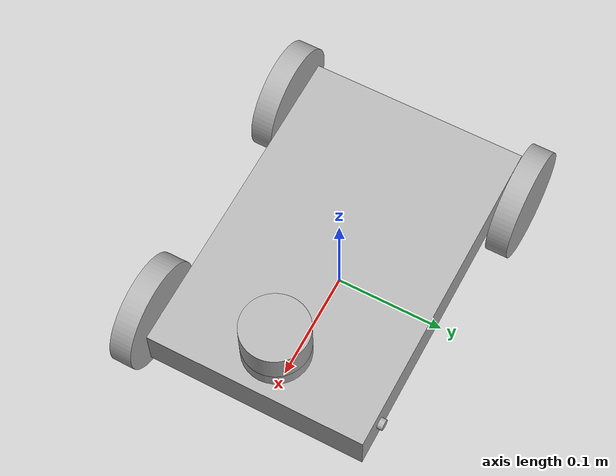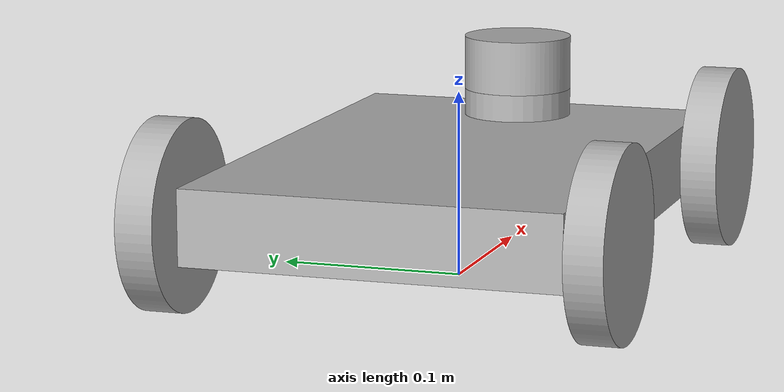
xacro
<?xml version="1.0" ?>
<robot name="four_wheel_drive" xmlns:xacro="http://www.ros.org/wiki/xacro">

<xacro:include filename="$(find four_wheel_drive_description)/urdf/materials.xacro" />
<xacro:include filename="$(find four_wheel_drive_description)/urdf/four_wheel_drive.trans" />
<xacro:include filename="$(find four_wheel_drive_description)/urdf/four_wheel_drive.gazebo" />
<link name="base_link">
  <inertial>
    <origin xyz="0.0019088784302461132 0.0 0.050477219607525464" rpy="0 0 0"/>
    <mass value="19.185261032629473"/>
    <inertia ixx="0.06577" iyy="0.148277" izz="0.208516" ixy="0.0" iyz="0.0" ixz="-0.00099"/>
  </inertial>
  <visual>
    <origin xyz="0 0 0" rpy="0 0 0"/>
    <geometry>
      <mesh filename="package://four_wheel_drive_description/meshes/base_link.stl" scale="0.001 0.001 0.001"/>
    </geometry>
    <material name="silver"/>
  </visual>
  <collision>
    <origin xyz="0 0 0" rpy="0 0 0"/>
    <geometry>
      <mesh filename="package://four_wheel_drive_description/meshes/base_link.stl" scale="0.001 0.001 0.001"/>
    </geometry>
  </collision>
</link>

<link name="right_front_wheel_1">
  <inertial>
    <origin xyz="0.0 -0.010000000000000023 0.0" rpy="0 0 0"/>
    <mass value="1.233075116533994"/>
    <inertia ixx="0.000812" iyy="0.001541" izz="0.000812" ixy="0.0" iyz="-0.0" ixz="0.0"/>
  </inertial>
  <visual>
    <origin xyz="-0.12 0.105 -0.05" rpy="0 0 0"/>
    <geometry>
      <mesh filename="package://four_wheel_drive_description/meshes/right_front_wheel_1.stl" scale="0.001 0.001 0.001"/>
    </geometry>
    <material name="silver"/>
  </visual>
  <collision>
    <origin xyz="-0.12 0.105 -0.05" rpy="0 0 0"/>
    <geometry>
      <mesh filename="package://four_wheel_drive_description/meshes/right_front_wheel_1.stl" scale="0.001 0.001 0.001"/>
    </geometry>
  </collision>
</link>

<link name="left_front_wheel_1">
  <inertial>
    <origin xyz="0.0 0.010000000000000023 0.0" rpy="0 0 0"/>
    <mass value="1.233075116533994"/>
    <inertia ixx="0.000812" iyy="0.001541" izz="0.000812" ixy="0.0" iyz="0.0" ixz="0.0"/>
  </inertial>
  <visual>
    <origin xyz="-0.12 -0.105 -0.05" rpy="0 0 0"/>
    <geometry>
      <mesh filename="package://four_wheel_drive_description/meshes/left_front_wheel_1.stl" scale="0.001 0.001 0.001"/>
    </geometry>
    <material name="silver"/>
  </visual>
  <collision>
    <origin xyz="-0.12 -0.105 -0.05" rpy="0 0 0"/>
    <geometry>
      <mesh filename="package://four_wheel_drive_description/meshes/left_front_wheel_1.stl" scale="0.001 0.001 0.001"/>
    </geometry>
  </collision>
</link>

<link name="right__rear_wheel_1">
  <inertial>
    <origin xyz="0.0 -0.009999999999999981 -1.3877787807814457e-17" rpy="0 0 0"/>
    <mass value="1.2330751165339937"/>
    <inertia ixx="0.000812" iyy="0.001541" izz="0.000812" ixy="-0.0" iyz="0.0" ixz="0.0"/>
  </inertial>
  <visual>
    <origin xyz="0.12 0.105 -0.05" rpy="0 0 0"/>
    <geometry>
      <mesh filename="package://four_wheel_drive_description/meshes/right__rear_wheel_1.stl" scale="0.001 0.001 0.001"/>
    </geometry>
    <material name="silver"/>
  </visual>
  <collision>
    <origin xyz="0.12 0.105 -0.05" rpy="0 0 0"/>
    <geometry>
      <mesh filename="package://four_wheel_drive_description/meshes/right__rear_wheel_1.stl" scale="0.001 0.001 0.001"/>
    </geometry>
  </collision>
</link>

<link name="left_rear_wheel_1">
  <inertial>
    <origin xyz="0.0 0.009999999999999981 -1.3877787807814457e-17" rpy="0 0 0"/>
    <mass value="1.2330751165339937"/>
    <inertia ixx="0.000812" iyy="0.001541" izz="0.000812" ixy="0.0" iyz="-0.0" ixz="0.0"/>
  </inertial>
  <visual>
    <origin xyz="0.12 -0.105 -0.05" rpy="0 0 0"/>
    <geometry>
      <mesh filename="package://four_wheel_drive_description/meshes/left_rear_wheel_1.stl" scale="0.001 0.001 0.001"/>
    </geometry>
    <material name="silver"/>
  </visual>
  <collision>
    <origin xyz="0.12 -0.105 -0.05" rpy="0 0 0"/>
    <geometry>
      <mesh filename="package://four_wheel_drive_description/meshes/left_rear_wheel_1.stl" scale="0.001 0.001 0.001"/>
    </geometry>
  </collision>
</link>

<link name="lidar_1">
  <inertial>
    <origin xyz="-1.3877787807814457e-17 -6.7014156251412376e-18 0.015" rpy="0 0 0"/>
    <mass value="0.6658605629283567"/>
    <inertia ixx="0.0002" iyy="0.0002" izz="0.0003" ixy="-0.0" iyz="-0.0" ixz="0.0"/>
  </inertial>
  <visual>
    <origin xyz="-0.11 -0.0 -0.085" rpy="0 0 0"/>
    <geometry>
      <mesh filename="package://four_wheel_drive_description/meshes/lidar_1.stl" scale="0.001 0.001 0.001"/>
    </geometry>
    <material name="silver"/>
  </visual>
  <collision>
    <origin xyz="-0.11 -0.0 -0.085" rpy="0 0 0"/>
    <geometry>
      <mesh filename="package://four_wheel_drive_description/meshes/lidar_1.stl" scale="0.001 0.001 0.001"/>
    </geometry>
  </collision>
</link>

<joint name="Revolute 1" type="continuous">
  <origin xyz="0.12 -0.105 0.05" rpy="0 0 0"/>
  <parent link="base_link"/>
  <child link="right_front_wheel_1"/>
  <axis xyz="0.0 -1.0 0.0"/>
</joint>

<joint name="Revolute 2" type="continuous">
  <origin xyz="0.12 0.105 0.05" rpy="0 0 0"/>
  <parent link="base_link"/>
  <child link="left_front_wheel_1"/>
  <axis xyz="0.0 1.0 0.0"/>
</joint>

<joint name="Revolute 3" type="continuous">
  <origin xyz="-0.12 -0.105 0.05" rpy="0 0 0"/>
  <parent link="base_link"/>
  <child link="right__rear_wheel_1"/>
  <axis xyz="0.0 -1.0 0.0"/>
</joint>

<joint name="Revolute 4" type="continuous">
  <origin xyz="-0.12 0.105 0.05" rpy="0 0 0"/>
  <parent link="base_link"/>
  <child link="left_rear_wheel_1"/>
  <axis xyz="0.0 1.0 0.0"/>
</joint>

<joint name="Rigid 5" type="fixed">
  <origin xyz="0.11 0.0 0.085" rpy="0 0 0"/>
  <parent link="base_link"/>
  <child link="lidar_1"/>
</joint>

</robot>

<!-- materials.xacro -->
<robot name="four_wheel_drive" xmlns:xacro="http://www.ros.org/wiki/xacro" >

<material name="silver">
  <color rgba="0.700 0.700 0.700 1.000"/>
</material>

</robot>

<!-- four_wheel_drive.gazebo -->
<robot name="four_wheel_drive" xmlns:xacro="http://www.ros.org/wiki/xacro" >

<xacro:property name="body_color" value="Gazebo/Silver" />

<gazebo>
  <plugin name="control" filename="libgazebo_ros_control.so"/>
</gazebo>
<gazebo reference="base_link">
  <material>${body_color}</material>
  <mu1>0.2</mu1>
  <mu2>0.2</mu2>
  <selfCollide>true</selfCollide>
  <gravity>true</gravity>
</gazebo>

<gazebo reference="right_front_wheel_1">
  <material>${body_color}</material>
  <mu1>0.2</mu1>
  <mu2>0.2</mu2>
  <selfCollide>true</selfCollide>
</gazebo>

<gazebo reference="left_front_wheel_1">
  <material>${body_color}</material>
  <mu1>0.2</mu1>
  <mu2>0.2</mu2>
  <selfCollide>true</selfCollide>
</gazebo>

<gazebo reference="right__rear_wheel_1">
  <material>${body_color}</material>
  <mu1>0.2</mu1>
  <mu2>0.2</mu2>
  <selfCollide>true</selfCollide>
</gazebo>

<gazebo reference="left_rear_wheel_1">
  <material>${body_color}</material>
  <mu1>0.2</mu1>
  <mu2>0.2</mu2>
  <selfCollide>true</selfCollide>
</gazebo>

<gazebo reference="lidar_1">
  <material>${body_color}</material>
  <mu1>0.2</mu1>
  <mu2>0.2</mu2>
  <selfCollide>true</selfCollide>
</gazebo>

</robot>
